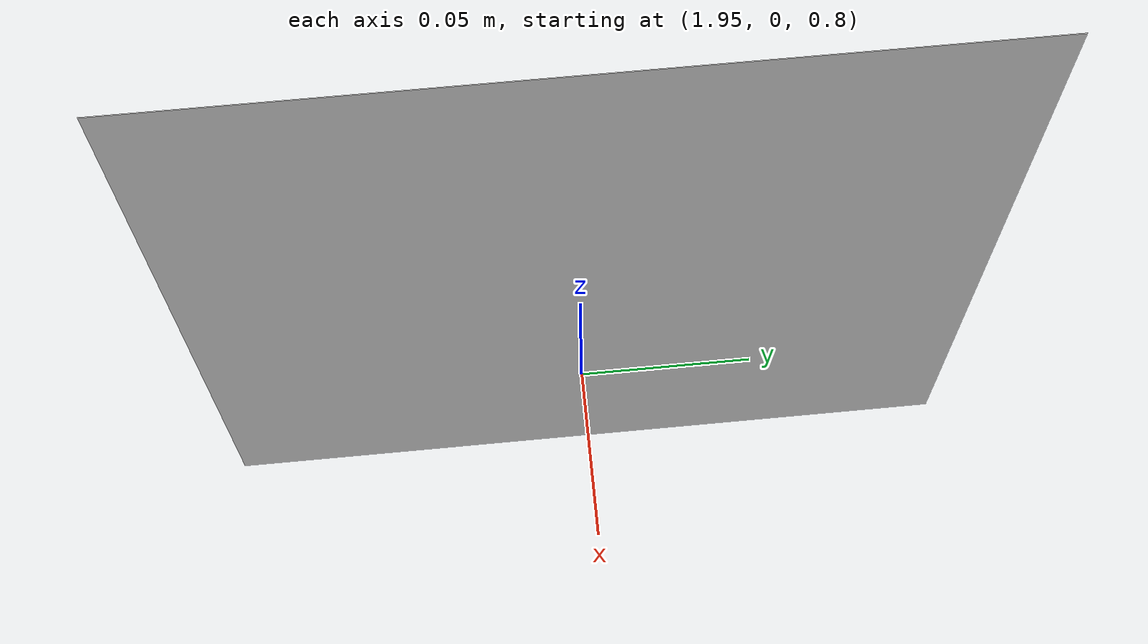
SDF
<?xml version='1.0'?>
<sdf version='1.6'>
    <model name="aruco_marker">
	<static>true</static>
      <link name="aruco_marker_0">
        <pose>1.969 0 0.9 0 -1.5718 0</pose>

        <collision name="aruco_marker_0_collision">
          <geometry>
			  <box>
				<size>0.01 0.2 0.2</size>
			  </box>
          </geometry>
		  <surface>
            <friction>
              <ode>
                <mu>100</mu>
                <mu2>50</mu2>
              </ode>
            </friction>
          </surface>
        </collision>

        <visual name="aruco_marker_0_visual">
          <cast_shadows>false</cast_shadows>
          <geometry>
			<plane>
              <normal>0 0 1</normal>
              <size>0.2 0.2</size>
            </plane>
          </geometry>
          <material>
            <script>
              <uri>model://aruco_marker/materials/scripts/aruco_marker.material</uri>
              <name>ARUCOMarker/Image</name>
            </script>
          </material>
        </visual>
      </link>
    </model>
</sdf>
